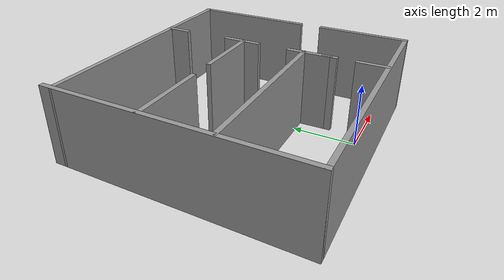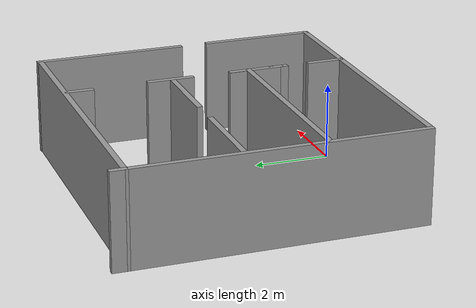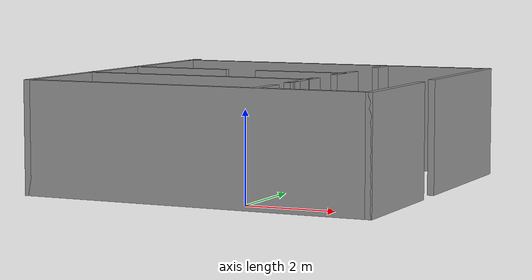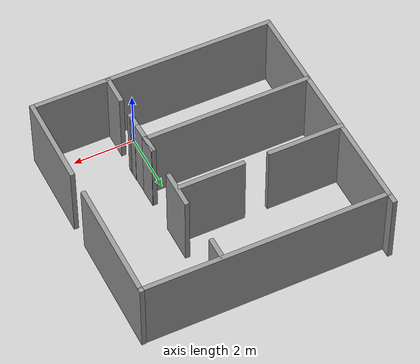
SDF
<?xml version='1.0'?>
<sdf version='1.6'>
  <model name='house'>
    <pose frame=''>-0.950574 3.35201 0 0 -0 0</pose>
    <link name='Wall_59'>
      <collision name='Wall_59_Collision'>
        <geometry>
          <box>
            <size>8 0.15 2.5</size>
          </box>
        </geometry>
        <pose frame=''>0 0 1.25 0 -0 0</pose>
      </collision>
      <visual name='Wall_59_Visual'>
        <pose frame=''>0 0 1.25 0 -0 0</pose>
        <geometry>
          <box>
            <size>8 0.15 2.5</size>
          </box>
        </geometry>
        <material>
          <script>
            <uri>file://media/materials/scripts/gazebo.material</uri>
            <name>Gazebo/Grey</name>
          </script>
          <ambient>1 1 1 1</ambient>
        </material>
        <meta>
          <layer>0</layer>
        </meta>
      </visual>
      <pose frame=''>-3.92483 0 0 0 -0 -1.5708</pose>
    </link>
    <link name='Wall_60'>
      <collision name='Wall_60_Collision'>
        <geometry>
          <box>
            <size>8 0.15 2.5</size>
          </box>
        </geometry>
        <pose frame=''>0 0 1.25 0 -0 0</pose>
      </collision>
      <visual name='Wall_60_Visual'>
        <pose frame=''>0 0 1.25 0 -0 0</pose>
        <geometry>
          <box>
            <size>8 0.15 2.5</size>
          </box>
        </geometry>
        <material>
          <script>
            <uri>file://media/materials/scripts/gazebo.material</uri>
            <name>Gazebo/Grey</name>
          </script>
          <ambient>1 1 1 1</ambient>
        </material>
        <meta>
          <layer>0</layer>
        </meta>
      </visual>
      <pose frame=''>0.000167 -3.925 0 0 -0 0</pose>
    </link>
    <link name='Wall_61'>
      <collision name='Wall_61_Collision'>
        <geometry>
          <box>
            <size>3 0.15 2.5</size>
          </box>
        </geometry>
        <pose frame=''>0 0 1.25 0 -0 0</pose>
      </collision>
      <visual name='Wall_61_Visual'>
        <pose frame=''>0 0 1.25 0 -0 0</pose>
        <geometry>
          <box>
            <size>3 0.15 2.5</size>
          </box>
        </geometry>
        <material>
          <script>
            <uri>file://media/materials/scripts/gazebo.material</uri>
            <name>Gazebo/Grey</name>
          </script>
          <ambient>1 1 1 1</ambient>
        </material>
        <meta>
          <layer>0</layer>
        </meta>
      </visual>
      <pose frame=''>3.92517 -2.5 0 0 -0 1.5708</pose>
    </link>
    <link name='Wall_63'>
      <collision name='Wall_63_Collision'>
        <geometry>
          <box>
            <size>4 0.15 2.5</size>
          </box>
        </geometry>
        <pose frame=''>0 0 1.25 0 -0 0</pose>
      </collision>
      <visual name='Wall_63_Visual'>
        <pose frame=''>0 0 1.25 0 -0 0</pose>
        <geometry>
          <box>
            <size>4 0.15 2.5</size>
          </box>
        </geometry>
        <material>
          <script>
            <uri>file://media/materials/scripts/gazebo.material</uri>
            <name>Gazebo/Grey</name>
          </script>
          <ambient>1 1 1 1</ambient>
        </material>
        <meta>
          <layer>0</layer>
        </meta>
      </visual>
      <pose frame=''>3.90768 1.68251 0 0 -0 1.5708</pose>
    </link>
    <link name='Wall_64'>
      <collision name='Wall_64_Collision'>
        <geometry>
          <box>
            <size>7.9651 0.15 2.5</size>
          </box>
        </geometry>
        <pose frame=''>0 0 1.25 0 -0 0</pose>
      </collision>
      <visual name='Wall_64_Visual'>
        <pose frame=''>0 0 1.25 0 -0 0</pose>
        <geometry>
          <box>
            <size>7.9651 0.15 2.5</size>
          </box>
        </geometry>
        <material>
          <script>
            <uri>file://media/materials/scripts/gazebo.material</uri>
            <name>Gazebo/Grey</name>
          </script>
          <ambient>1 1 1 1</ambient>
        </material>
        <meta>
          <layer>0</layer>
        </meta>
      </visual>
      <pose frame=''>-0.017323 3.60751 0 0 -0 3.13712</pose>
    </link>
    <link name='Wall_66'>
      <collision name='Wall_66_Collision'>
        <geometry>
          <box>
            <size>1 0.15 2.5</size>
          </box>
        </geometry>
        <pose frame=''>0 0 1.25 0 -0 0</pose>
      </collision>
      <visual name='Wall_66_Visual'>
        <pose frame=''>0 0 1.25 0 -0 0</pose>
        <geometry>
          <box>
            <size>1 0.15 2.5</size>
          </box>
        </geometry>
        <material>
          <script>
            <uri>file://media/materials/scripts/gazebo.material</uri>
            <name>Gazebo/Grey</name>
          </script>
          <ambient>1 1 1 1</ambient>
        </material>
        <meta>
          <layer>0</layer>
        </meta>
      </visual>
      <pose frame=''>1.46211 -3.46806 0 0 -0 1.5708</pose>
    </link>
    <link name='Wall_68'>
      <collision name='Wall_68_Collision'>
        <geometry>
          <box>
            <size>1.01023 0.15 2.5</size>
          </box>
        </geometry>
        <pose frame=''>0 0 1.25 0 -0 0</pose>
      </collision>
      <visual name='Wall_68_Visual'>
        <pose frame=''>0 0 1.25 0 -0 0</pose>
        <geometry>
          <box>
            <size>1.01023 0.15 2.5</size>
          </box>
        </geometry>
        <material>
          <script>
            <uri>file://media/materials/scripts/gazebo.material</uri>
            <name>Gazebo/Grey</name>
          </script>
          <ambient>1 1 1 1</ambient>
        </material>
        <meta>
          <layer>0</layer>
        </meta>
      </visual>
      <pose frame=''>1.45211 -1.76306 0 0 -0 1.59405</pose>
    </link>
    <link name='Wall_69'>
      <collision name='Wall_69_Collision'>
        <geometry>
          <box>
            <size>5.48001 0.15 2.5</size>
          </box>
        </geometry>
        <pose frame=''>0 0 1.25 0 -0 0</pose>
      </collision>
      <visual name='Wall_69_Visual'>
        <pose frame=''>0 0 1.25 0 -0 0</pose>
        <geometry>
          <box>
            <size>5.48001 0.15 2.5</size>
          </box>
        </geometry>
        <material>
          <script>
            <uri>file://media/materials/scripts/gazebo.material</uri>
            <name>Gazebo/Grey</name>
          </script>
          <ambient>1 1 1 1</ambient>
        </material>
        <meta>
          <layer>0</layer>
        </meta>
      </visual>
      <pose frame=''>-1.22289 -1.33806 0 0 -0 -3.13972</pose>
    </link>
    <link name='Wall_71'>
      <collision name='Wall_71_Collision'>
        <geometry>
          <box>
            <size>0.5 0.15 2.5</size>
          </box>
        </geometry>
        <pose frame=''>0 0 1.25 0 -0 0</pose>
      </collision>
      <visual name='Wall_71_Visual'>
        <pose frame=''>0 0 1.25 0 -0 0</pose>
        <geometry>
          <box>
            <size>0.5 0.15 2.5</size>
          </box>
        </geometry>
        <material>
          <script>
            <uri>file://media/materials/scripts/gazebo.material</uri>
            <name>Gazebo/Grey</name>
          </script>
          <ambient>1 1 1 1</ambient>
        </material>
        <meta>
          <layer>0</layer>
        </meta>
      </visual>
      <pose frame=''>1.46214 -2.16333 0 0 -0 -1.5708</pose>
    </link>
    <link name='Wall_79'>
      <collision name='Wall_79_Collision'>
        <geometry>
          <box>
            <size>1.25 0.15 2.5</size>
          </box>
        </geometry>
        <pose frame=''>0 0 1.25 0 -0 0</pose>
      </collision>
      <visual name='Wall_79_Visual'>
        <pose frame=''>0 0 1.25 0 -0 0</pose>
        <geometry>
          <box>
            <size>1.25 0.15 2.5</size>
          </box>
        </geometry>
        <material>
          <script>
            <uri>file://media/materials/scripts/gazebo.material</uri>
            <name>Gazebo/Grey</name>
          </script>
          <ambient>1 1 1 1</ambient>
        </material>
        <meta>
          <layer>0</layer>
        </meta>
      </visual>
      <pose frame=''>1.43524 0.808899 0 0 -0 -1.5708</pose>
    </link>
    <link name='Wall_81'>
      <collision name='Wall_81_Collision'>
        <geometry>
          <box>
            <size>0.622007 0.15 2.5</size>
          </box>
        </geometry>
        <pose frame=''>0 0 1.25 0 -0 0</pose>
      </collision>
      <visual name='Wall_81_Visual'>
        <pose frame=''>0 0 1.25 0 -0 0</pose>
        <geometry>
          <box>
            <size>0.622007 0.15 2.5</size>
          </box>
        </geometry>
        <material>
          <script>
            <uri>file://media/materials/scripts/gazebo.material</uri>
            <name>Gazebo/Grey</name>
          </script>
          <ambient>1 1 1 1</ambient>
        </material>
        <meta>
          <layer>0</layer>
        </meta>
      </visual>
      <pose frame=''>1.43867 -1.09708 0 0 -0 -1.55624</pose>
    </link>
    <link name='Wall_82'>
      <collision name='Wall_82_Collision'>
        <geometry>
          <box>
            <size>0.622007 0.15 2.5</size>
          </box>
        </geometry>
        <pose frame=''>0 0 1.25 0 -0 0</pose>
      </collision>
      <visual name='Wall_82_Visual'>
        <pose frame=''>0 0 1.25 0 -0 0</pose>
        <geometry>
          <box>
            <size>0.622007 0.15 2.5</size>
          </box>
        </geometry>
        <material>
          <script>
            <uri>file://media/materials/scripts/gazebo.material</uri>
            <name>Gazebo/Grey</name>
          </script>
          <ambient>1 1 1 1</ambient>
        </material>
        <meta>
          <layer>0</layer>
        </meta>
      </visual>
      <pose frame=''>1.44867 -1.09708 0 0 -0 1.58536</pose>
    </link>
    <link name='Wall_85'>
      <collision name='Wall_85_Collision'>
        <geometry>
          <box>
            <size>0.75 0.15 2.5</size>
          </box>
        </geometry>
        <pose frame=''>0 0 1.25 0 -0 0</pose>
      </collision>
      <visual name='Wall_85_Visual'>
        <pose frame=''>0 0 1.25 0 -0 0</pose>
        <geometry>
          <box>
            <size>0.75 0.15 2.5</size>
          </box>
        </geometry>
        <material>
          <script>
            <uri>file://media/materials/scripts/gazebo.material</uri>
            <name>Gazebo/Grey</name>
          </script>
          <ambient>1 1 1 1</ambient>
        </material>
        <meta>
          <layer>0</layer>
        </meta>
      </visual>
      <pose frame=''>1.37994 3.22838 0 0 -0 1.5708</pose>
    </link>
    <link name='Wall_88'>
      <collision name='Wall_88_Collision'>
        <geometry>
          <box>
            <size>2.25 0.15 2.5</size>
          </box>
        </geometry>
        <pose frame=''>0 0 1.25 0 -0 0</pose>
      </collision>
      <visual name='Wall_88_Visual'>
        <pose frame=''>0 0 1.25 0 -0 0</pose>
        <geometry>
          <box>
            <size>2.25 0.15 2.5</size>
          </box>
        </geometry>
        <material>
          <script>
            <uri>file://media/materials/scripts/gazebo.material</uri>
            <name>Gazebo/Grey</name>
          </script>
          <ambient>1 1 1 1</ambient>
        </material>
        <meta>
          <layer>0</layer>
        </meta>
      </visual>
      <pose frame=''>0.376101 0.761417 0 0 -0 3.14159</pose>
    </link>
    <link name='Wall_94'>
      <collision name='Wall_94_Collision'>
        <geometry>
          <box>
            <size>2.5 0.15 2.5</size>
          </box>
        </geometry>
        <pose frame=''>0 0 1.25 0 -0 0</pose>
      </collision>
      <visual name='Wall_94_Visual'>
        <pose frame=''>0 0 1.25 0 -0 0</pose>
        <geometry>
          <box>
            <size>2.5 0.15 2.5</size>
          </box>
        </geometry>
        <material>
          <script>
            <uri>file://media/materials/scripts/gazebo.material</uri>
            <name>Gazebo/Grey</name>
          </script>
          <ambient>1 1 1 1</ambient>
        </material>
        <meta>
          <layer>0</layer>
        </meta>
      </visual>
      <pose frame=''>-2.74854 0.761504 0 0 -0 3.14159</pose>
    </link>
    <static>1</static>
  </model>
</sdf>
